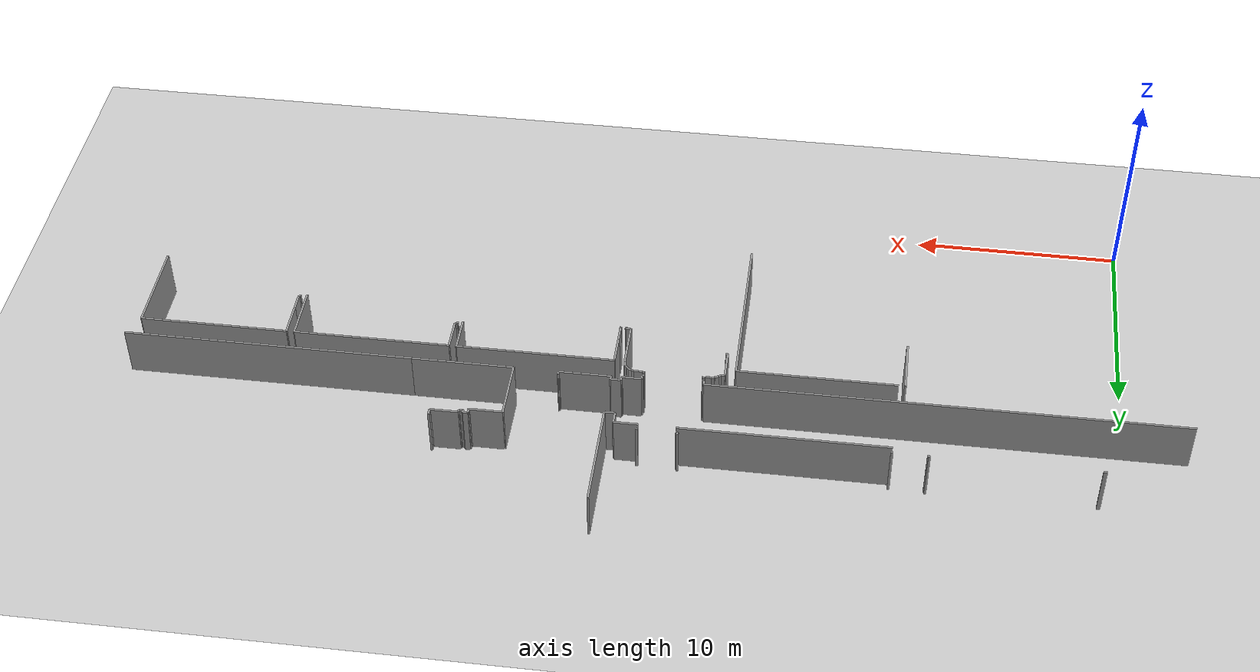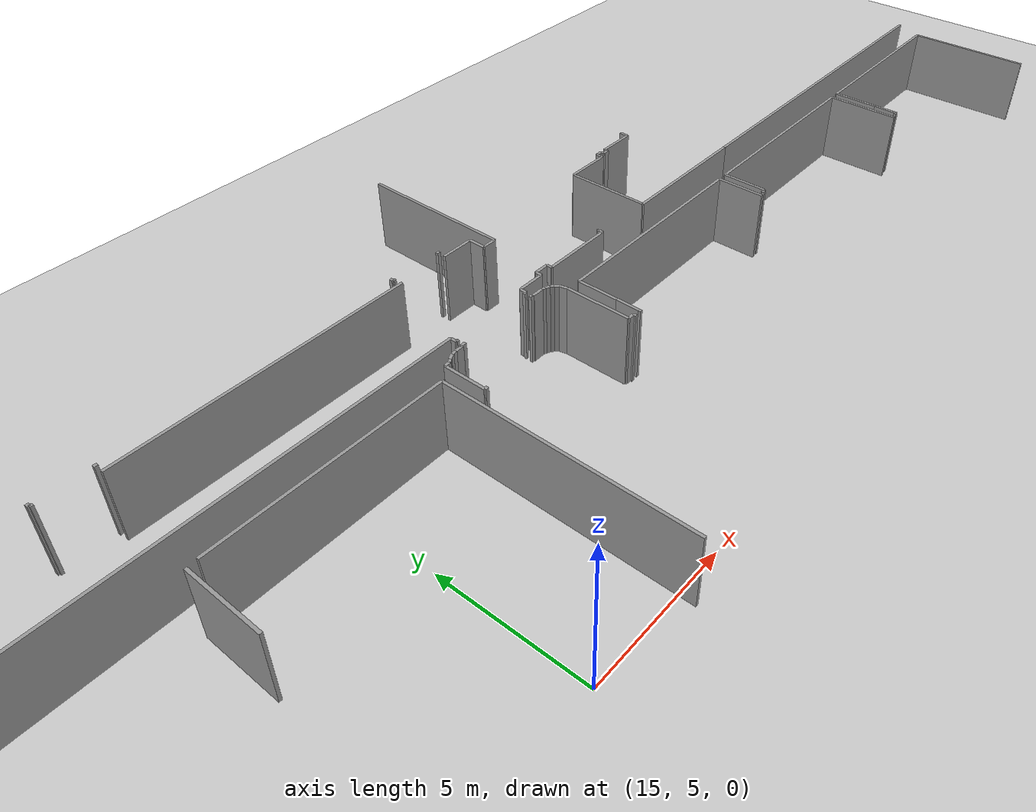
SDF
<sdf version="1.6">
 <world name="default">
  <model name="ground_plane">
   <static>1</static>
   <link name="link">
    <collision name="collision">
     <geometry><plane><normal>0 0 1</normal><size>100 100</size></plane></geometry>
     <surface><friction><ode><mu>100</mu><mu2>50</mu2></ode></friction></surface>
    </collision>
    <visual name="visual">
     <cast_shadows>0</cast_shadows>
     <geometry><plane><normal>0 0 1</normal><size>100 100</size></plane></geometry>
     <material>
      <script><uri>file://media/materials/scripts/gazebo.material</uri><name>Gazebo/Grey</name></script>
     </material>
    </visual>
   </link>
  </model>
  <model name="0510032267_A_40_1_101">
   <static>1</static>
   <link name="Wall_248">
    <collision name="Wall_248_Collision">
     <geometry><box><size>2.64825675598 0.1 2.5</size></box></geometry>
     <pose>1.32412837799 0 1.25 0 0 0</pose>
    </collision>
    <visual name="Wall_248_Visual">
     <pose>1.32412837799 0 1.25 0 0 0</pose>
     <geometry><box><size>2.64825675598 0.1 2.5</size></box></geometry>
     <material>
      <script><uri>file://media/materials/scripts/gazebo.material</uri><name>Gazebo/Grey</name></script>
      <ambient>1 1 1 1</ambient>
     </material>
    </visual>
    <pose>58.1604915522 -20.8660621811 0 0 0 -1.57079632679</pose>
   </link>
   <link name="Wall_259">
    <collision name="Wall_259_Collision">
     <geometry><box><size>7.67281530573 0.1 2.5</size></box></geometry>
     <pose>3.83640765286 0 1.25 0 0 0</pose>
    </collision>
    <visual name="Wall_259_Visual">
     <pose>3.83640765286 0 1.25 0 0 0</pose>
     <geometry><box><size>7.67281530573 0.1 2.5</size></box></geometry>
     <material>
      <script><uri>file://media/materials/scripts/gazebo.material</uri><name>Gazebo/Grey</name></script>
      <ambient>1 1 1 1</ambient>
     </material>
    </visual>
    <pose>58.4795938467 -20.8532269235 0 0 0 0.0</pose>
   </link>
   <link name="Wall_260">
    <collision name="Wall_260_Collision">
     <geometry><box><size>8.33732581857 0.1 2.5</size></box></geometry>
     <pose>4.16866290928 0 1.25 0 0 0</pose>
    </collision>
    <visual name="Wall_260_Visual">
     <pose>4.16866290928 0 1.25 0 0 0</pose>
     <geometry><box><size>8.33732581857 0.1 2.5</size></box></geometry>
     <material>
      <script><uri>file://media/materials/scripts/gazebo.material</uri><name>Gazebo/Grey</name></script>
      <ambient>1 1 1 1</ambient>
     </material>
    </visual>
    <pose>66.1524091524 -20.8532269235 0 0 0 -1.57079632679</pose>
   </link>
   <link name="Wall_390">
    <collision name="Wall_390_Collision">
     <geometry><box><size>0.112213192357 0.1 2.5</size></box></geometry>
     <pose>0.0561065961787 0 1.25 0 0 0</pose>
    </collision>
    <visual name="Wall_390_Visual">
     <pose>0.0561065961787 0 1.25 0 0 0</pose>
     <geometry><box><size>0.112213192357 0.1 2.5</size></box></geometry>
     <material>
      <script><uri>file://media/materials/scripts/gazebo.material</uri><name>Gazebo/Grey</name></script>
      <ambient>1 1 1 1</ambient>
     </material>
    </visual>
    <pose>58.6613207607 -16.5469344703 0 0 0 3.14159265359</pose>
   </link>
   <link name="Wall_391">
    <collision name="Wall_391_Collision">
     <geometry><box><size>0.0955654820529 0.1 2.5</size></box></geometry>
     <pose>0.0477827410264 0 1.25 0 0 0</pose>
    </collision>
    <visual name="Wall_391_Visual">
     <pose>0.0477827410264 0 1.25 0 0 0</pose>
     <geometry><box><size>0.0955654820529 0.1 2.5</size></box></geometry>
     <material>
      <script><uri>file://media/materials/scripts/gazebo.material</uri><name>Gazebo/Grey</name></script>
      <ambient>1 1 1 1</ambient>
     </material>
    </visual>
    <pose>56.9962955668 -16.5469344703 0 0 0 3.14159265359</pose>
   </link>
   <link name="Wall_392">
    <collision name="Wall_392_Collision">
     <geometry><box><size>0.118821443776 0.1 2.5</size></box></geometry>
     <pose>0.0594107218879 0 1.25 0 0 0</pose>
    </collision>
    <visual name="Wall_392_Visual">
     <pose>0.0594107218879 0 1.25 0 0 0</pose>
     <geometry><box><size>0.118821443776 0.1 2.5</size></box></geometry>
     <material>
      <script><uri>file://media/materials/scripts/gazebo.material</uri><name>Gazebo/Grey</name></script>
      <ambient>1 1 1 1</ambient>
     </material>
    </visual>
    <pose>56.9007300847 -16.5469344703 0 0 0 1.57079632679</pose>
   </link>
   <link name="Wall_408">
    <collision name="Wall_408_Collision">
     <geometry><box><size>0.124158877614 0.1 2.5</size></box></geometry>
     <pose>0.062079438807 0 1.25 0 0 0</pose>
    </collision>
    <visual name="Wall_408_Visual">
     <pose>0.062079438807 0 1.25 0 0 0</pose>
     <geometry><box><size>0.124158877614 0.1 2.5</size></box></geometry>
     <material>
      <script><uri>file://media/materials/scripts/gazebo.material</uri><name>Gazebo/Grey</name></script>
      <ambient>1 1 1 1</ambient>
     </material>
    </visual>
    <pose>70.3885524752 -16.5553218663 0 0 0 3.14159265359</pose>
   </link>
   <link name="Wall_409">
    <collision name="Wall_409_Collision">
     <geometry><box><size>0.0902280482148 0.1 2.5</size></box></geometry>
     <pose>0.0451140241074 0 1.25 0 0 0</pose>
    </collision>
    <visual name="Wall_409_Visual">
     <pose>0.0451140241074 0 1.25 0 0 0</pose>
     <geometry><box><size>0.0902280482148 0.1 2.5</size></box></geometry>
     <material>
      <script><uri>file://media/materials/scripts/gazebo.material</uri><name>Gazebo/Grey</name></script>
      <ambient>1 1 1 1</ambient>
     </material>
    </visual>
    <pose>68.5218485313 -16.5553218663 0 0 0 3.14159265359</pose>
   </link>
   <link name="Wall_410">
    <collision name="Wall_410_Collision">
     <geometry><box><size>0.11920268905 0.1 2.5</size></box></geometry>
     <pose>0.059601344525 0 1.25 0 0 0</pose>
    </collision>
    <visual name="Wall_410_Visual">
     <pose>0.059601344525 0 1.25 0 0 0</pose>
     <geometry><box><size>0.11920268905 0.1 2.5</size></box></geometry>
     <material>
      <script><uri>file://media/materials/scripts/gazebo.material</uri><name>Gazebo/Grey</name></script>
      <ambient>1 1 1 1</ambient>
     </material>
    </visual>
    <pose>68.431620483 -16.5553218663 0 0 0 1.57079632679</pose>
   </link>
   <link name="Wall_414">
    <collision name="Wall_414_Collision">
     <geometry><box><size>0.107384085551 0.1 2.5</size></box></geometry>
     <pose>0.0536920427757 0 1.25 0 0 0</pose>
    </collision>
    <visual name="Wall_414_Visual">
     <pose>0.0536920427757 0 1.25 0 0 0</pose>
     <geometry><box><size>0.107384085551 0.1 2.5</size></box></geometry>
     <material>
      <script><uri>file://media/materials/scripts/gazebo.material</uri><name>Gazebo/Grey</name></script>
      <ambient>1 1 1 1</ambient>
     </material>
    </visual>
    <pose>66.74931217 -21.9461300428 0 0 0 3.14159265359</pose>
   </link>
   <link name="Wall_415">
    <collision name="Wall_415_Collision">
     <geometry><box><size>1.46499850679 0.1 2.5</size></box></geometry>
     <pose>0.732499253395 0 1.25 0 0 0</pose>
    </collision>
    <visual name="Wall_415_Visual">
     <pose>0.732499253395 0 1.25 0 0 0</pose>
     <geometry><box><size>1.46499850679 0.1 2.5</size></box></geometry>
     <material>
      <script><uri>file://media/materials/scripts/gazebo.material</uri><name>Gazebo/Grey</name></script>
      <ambient>1 1 1 1</ambient>
     </material>
    </visual>
    <pose>66.6419280844 -21.9461300428 0 0 0 1.57079632679</pose>
   </link>
   <link name="Wall_416">
    <collision name="Wall_416_Collision">
     <geometry><box><size>0.178422788301 0.1 2.5</size></box></geometry>
     <pose>0.0892113941504 0 1.25 0 0 0</pose>
    </collision>
    <visual name="Wall_416_Visual">
     <pose>0.0892113941504 0 1.25 0 0 0</pose>
     <geometry><box><size>0.178422788301 0.1 2.5</size></box></geometry>
     <material>
      <script><uri>file://media/materials/scripts/gazebo.material</uri><name>Gazebo/Grey</name></script>
      <ambient>1 1 1 1</ambient>
     </material>
    </visual>
    <pose>66.6419280844 -20.481131536 0 0 0 0.0</pose>
   </link>
   <link name="Wall_417">
    <collision name="Wall_417_Collision">
     <geometry><box><size>0.15060984525 0.1 2.5</size></box></geometry>
     <pose>0.0753049226251 0 1.25 0 0 0</pose>
    </collision>
    <visual name="Wall_417_Visual">
     <pose>0.0753049226251 0 1.25 0 0 0</pose>
     <geometry><box><size>0.15060984525 0.1 2.5</size></box></geometry>
     <material>
      <script><uri>file://media/materials/scripts/gazebo.material</uri><name>Gazebo/Grey</name></script>
      <ambient>1 1 1 1</ambient>
     </material>
    </visual>
    <pose>66.8203508727 -20.481131536 0 0 0 0.687391822365</pose>
   </link>
   <link name="Wall_418">
    <collision name="Wall_418_Collision">
     <geometry><box><size>0.204313520333 0.1 2.5</size></box></geometry>
     <pose>0.102156760166 0 1.25 0 0 0</pose>
    </collision>
    <visual name="Wall_418_Visual">
     <pose>0.102156760166 0 1.25 0 0 0</pose>
     <geometry><box><size>0.204313520333 0.1 2.5</size></box></geometry>
     <material>
      <script><uri>file://media/materials/scripts/gazebo.material</uri><name>Gazebo/Grey</name></script>
      <ambient>1 1 1 1</ambient>
     </material>
    </visual>
    <pose>66.9367577631 -20.3855660539 0 0 0 0.463647609001</pose>
   </link>
   <link name="Wall_419">
    <collision name="Wall_419_Collision">
     <geometry><box><size>0.151020242014 0.1 2.5</size></box></geometry>
     <pose>0.0755101210072 0 1.25 0 0 0</pose>
    </collision>
    <visual name="Wall_419_Visual">
     <pose>0.0755101210072 0 1.25 0 0 0</pose>
     <geometry><box><size>0.151020242014 0.1 2.5</size></box></geometry>
     <material>
      <script><uri>file://media/materials/scripts/gazebo.material</uri><name>Gazebo/Grey</name></script>
      <ambient>1 1 1 1</ambient>
     </material>
    </visual>
    <pose>67.1195013312 -20.2941942699 0 0 0 0.138445919906</pose>
   </link>
   <link name="Wall_420">
    <collision name="Wall_420_Collision">
     <geometry><box><size>0.265855037839 0.1 2.5</size></box></geometry>
     <pose>0.132927518919 0 1.25 0 0 0</pose>
    </collision>
    <visual name="Wall_420_Visual">
     <pose>0.132927518919 0 1.25 0 0 0</pose>
     <geometry><box><size>0.265855037839 0.1 2.5</size></box></geometry>
     <material>
      <script><uri>file://media/materials/scripts/gazebo.material</uri><name>Gazebo/Grey</name></script>
      <ambient>1 1 1 1</ambient>
     </material>
    </visual>
    <pose>67.2690765604 -20.2733528616 0 0 0 0.0</pose>
   </link>
   <link name="Wall_421">
    <collision name="Wall_421_Collision">
     <geometry><box><size>0.041428653124 0.1 2.5</size></box></geometry>
     <pose>0.020714326562 0 1.25 0 0 0</pose>
    </collision>
    <visual name="Wall_421_Visual">
     <pose>0.020714326562 0 1.25 0 0 0</pose>
     <geometry><box><size>0.041428653124 0.1 2.5</size></box></geometry>
     <material>
      <script><uri>file://media/materials/scripts/gazebo.material</uri><name>Gazebo/Grey</name></script>
      <ambient>1 1 1 1</ambient>
     </material>
    </visual>
    <pose>67.5349315982 -20.2733528616 0 0 0 1.57079632679</pose>
   </link>
   <link name="Wall_422">
    <collision name="Wall_422_Collision">
     <geometry><box><size>0.162029241513 0.1 2.5</size></box></geometry>
     <pose>0.0810146207563 0 1.25 0 0 0</pose>
    </collision>
    <visual name="Wall_422_Visual">
     <pose>0.0810146207563 0 1.25 0 0 0</pose>
     <geometry><box><size>0.162029241513 0.1 2.5</size></box></geometry>
     <material>
      <script><uri>file://media/materials/scripts/gazebo.material</uri><name>Gazebo/Grey</name></script>
      <ambient>1 1 1 1</ambient>
     </material>
    </visual>
    <pose>67.5349315982 -20.2319242084 0 0 0 0.0</pose>
   </link>
   <link name="Wall_423">
    <collision name="Wall_423_Collision">
     <geometry><box><size>0.104715368632 0.1 2.5</size></box></geometry>
     <pose>0.0523576843162 0 1.25 0 0 0</pose>
    </collision>
    <visual name="Wall_423_Visual">
     <pose>0.0523576843162 0 1.25 0 0 0</pose>
     <geometry><box><size>0.104715368632 0.1 2.5</size></box></geometry>
     <material>
      <script><uri>file://media/materials/scripts/gazebo.material</uri><name>Gazebo/Grey</name></script>
      <ambient>1 1 1 1</ambient>
     </material>
    </visual>
    <pose>70.4184166884 -20.2319242084 0 0 0 0.0</pose>
   </link>
   <link name="Wall_424">
    <collision name="Wall_424_Collision">
     <geometry><box><size>0.0261788421581 0.1 2.5</size></box></geometry>
     <pose>0.013089421079 0 1.25 0 0 0</pose>
    </collision>
    <visual name="Wall_424_Visual">
     <pose>0.013089421079 0 1.25 0 0 0</pose>
     <geometry><box><size>0.0261788421581 0.1 2.5</size></box></geometry>
     <material>
      <script><uri>file://media/materials/scripts/gazebo.material</uri><name>Gazebo/Grey</name></script>
      <ambient>1 1 1 1</ambient>
     </material>
    </visual>
    <pose>70.523132057 -20.2319242084 0 0 0 -1.57079632679</pose>
   </link>
   <link name="Wall_425">
    <collision name="Wall_425_Collision">
     <geometry><box><size>0.404628317628 0.1 2.5</size></box></geometry>
     <pose>0.202314158814 0 1.25 0 0 0</pose>
    </collision>
    <visual name="Wall_425_Visual">
     <pose>0.202314158814 0 1.25 0 0 0</pose>
     <geometry><box><size>0.404628317628 0.1 2.5</size></box></geometry>
     <material>
      <script><uri>file://media/materials/scripts/gazebo.material</uri><name>Gazebo/Grey</name></script>
      <ambient>1 1 1 1</ambient>
     </material>
    </visual>
    <pose>70.523132057 -20.2581030506 0 0 0 0.0</pose>
   </link>
   <link name="Wall_426">
    <collision name="Wall_426_Collision">
     <geometry><box><size>0.120098985071 0.1 2.5</size></box></geometry>
     <pose>0.0600494925353 0 1.25 0 0 0</pose>
    </collision>
    <visual name="Wall_426_Visual">
     <pose>0.0600494925353 0 1.25 0 0 0</pose>
     <geometry><box><size>0.120098985071 0.1 2.5</size></box></geometry>
     <material>
      <script><uri>file://media/materials/scripts/gazebo.material</uri><name>Gazebo/Grey</name></script>
      <ambient>1 1 1 1</ambient>
     </material>
    </visual>
    <pose>70.9277603746 -20.2581030506 0 0 0 -0.273212493587</pose>
   </link>
   <link name="Wall_427">
    <collision name="Wall_427_Collision">
     <geometry><box><size>0.148931199877 0.1 2.5</size></box></geometry>
     <pose>0.0744655999385 0 1.25 0 0 0</pose>
    </collision>
    <visual name="Wall_427_Visual">
     <pose>0.0744655999385 0 1.25 0 0 0</pose>
     <geometry><box><size>0.148931199877 0.1 2.5</size></box></geometry>
     <material>
      <script><uri>file://media/materials/scripts/gazebo.material</uri><name>Gazebo/Grey</name></script>
      <ambient>1 1 1 1</ambient>
     </material>
    </visual>
    <pose>71.0434047745 -20.2905088989 0 0 0 -0.398729399306</pose>
   </link>
   <link name="Wall_428">
    <collision name="Wall_428_Collision">
     <geometry><box><size>0.128094692901 0.1 2.5</size></box></geometry>
     <pose>0.0640473464504 0 1.25 0 0 0</pose>
    </collision>
    <visual name="Wall_428_Visual">
     <pose>0.0640473464504 0 1.25 0 0 0</pose>
     <geometry><box><size>0.128094692901 0.1 2.5</size></box></geometry>
     <material>
      <script><uri>file://media/materials/scripts/gazebo.material</uri><name>Gazebo/Grey</name></script>
      <ambient>1 1 1 1</ambient>
     </material>
    </visual>
    <pose>71.1806530732 -20.3483310988 0 0 0 -0.706043688824</pose>
   </link>
   <link name="Wall_429">
    <collision name="Wall_429_Collision">
     <geometry><box><size>0.16897329798 0.1 2.5</size></box></geometry>
     <pose>0.0844866489899 0 1.25 0 0 0</pose>
    </collision>
    <visual name="Wall_429_Visual">
     <pose>0.0844866489899 0 1.25 0 0 0</pose>
     <geometry><box><size>0.16897329798 0.1 2.5</size></box></geometry>
     <material>
      <script><uri>file://media/materials/scripts/gazebo.material</uri><name>Gazebo/Grey</name></script>
      <ambient>1 1 1 1</ambient>
     </material>
    </visual>
    <pose>71.2781247816 -20.4314425686 0 0 0 -0.845528040585</pose>
   </link>
   <link name="Wall_430">
    <collision name="Wall_430_Collision">
     <geometry><box><size>0.267279796427 0.1 2.5</size></box></geometry>
     <pose>0.133639898214 0 1.25 0 0 0</pose>
    </collision>
    <visual name="Wall_430_Visual">
     <pose>0.133639898214 0 1.25 0 0 0</pose>
     <geometry><box><size>0.267279796427 0.1 2.5</size></box></geometry>
     <material>
      <script><uri>file://media/materials/scripts/gazebo.material</uri><name>Gazebo/Grey</name></script>
      <ambient>1 1 1 1</ambient>
     </material>
    </visual>
    <pose>71.3902108922 -20.5578889178 0 0 0 -1.3390794856</pose>
   </link>
   <link name="Wall_431">
    <collision name="Wall_431_Collision">
     <geometry><box><size>2.24083263968 0.1 2.5</size></box></geometry>
     <pose>1.12041631984 0 1.25 0 0 0</pose>
    </collision>
    <visual name="Wall_431_Visual">
     <pose>1.12041631984 0 1.25 0 0 0</pose>
     <geometry><box><size>2.24083263968 0.1 2.5</size></box></geometry>
     <material>
      <script><uri>file://media/materials/scripts/gazebo.material</uri><name>Gazebo/Grey</name></script>
      <ambient>1 1 1 1</ambient>
     </material>
    </visual>
    <pose>71.4515913813 -20.8180252766 0 0 0 -1.57079632679</pose>
   </link>
   <link name="Wall_432">
    <collision name="Wall_432_Collision">
     <geometry><box><size>0.241328258535 0.1 2.5</size></box></geometry>
     <pose>0.120664129268 0 1.25 0 0 0</pose>
    </collision>
    <visual name="Wall_432_Visual">
     <pose>0.120664129268 0 1.25 0 0 0</pose>
     <geometry><box><size>0.241328258535 0.1 2.5</size></box></geometry>
     <material>
      <script><uri>file://media/materials/scripts/gazebo.material</uri><name>Gazebo/Grey</name></script>
      <ambient>1 1 1 1</ambient>
     </material>
    </visual>
    <pose>71.4515913813 -23.0588579162 0 0 0 0.0</pose>
   </link>
   <link name="Wall_433">
    <collision name="Wall_433_Collision">
     <geometry><box><size>0.10357163281 0.1 2.5</size></box></geometry>
     <pose>0.051785816405 0 1.25 0 0 0</pose>
    </collision>
    <visual name="Wall_433_Visual">
     <pose>0.051785816405 0 1.25 0 0 0</pose>
     <geometry><box><size>0.10357163281 0.1 2.5</size></box></geometry>
     <material>
      <script><uri>file://media/materials/scripts/gazebo.material</uri><name>Gazebo/Grey</name></script>
      <ambient>1 1 1 1</ambient>
     </material>
    </visual>
    <pose>71.6929196399 -23.0588579162 0 0 0 -1.57079632679</pose>
   </link>
   <link name="Wall_450">
    <collision name="Wall_450_Collision">
     <geometry><box><size>1.42420526246 0.1 2.5</size></box></geometry>
     <pose>0.712102631228 0 1.25 0 0 0</pose>
    </collision>
    <visual name="Wall_450_Visual">
     <pose>0.712102631228 0 1.25 0 0 0</pose>
     <geometry><box><size>1.42420526246 0.1 2.5</size></box></geometry>
     <material>
      <script><uri>file://media/materials/scripts/gazebo.material</uri><name>Gazebo/Grey</name></script>
      <ambient>1 1 1 1</ambient>
     </material>
    </visual>
    <pose>71.9506414452 -22.2682822994 0 0 0 1.57079632679</pose>
   </link>
   <link name="Wall_451">
    <collision name="Wall_451_Collision">
     <geometry><box><size>7.6289720992 0.1 2.5</size></box></geometry>
     <pose>3.8144860496 0 1.25 0 0 0</pose>
    </collision>
    <visual name="Wall_451_Visual">
     <pose>3.8144860496 0 1.25 0 0 0</pose>
     <geometry><box><size>7.6289720992 0.1 2.5</size></box></geometry>
     <material>
      <script><uri>file://media/materials/scripts/gazebo.material</uri><name>Gazebo/Grey</name></script>
      <ambient>1 1 1 1</ambient>
     </material>
    </visual>
    <pose>71.9506414452 -20.844077037 0 0 0 0.0</pose>
   </link>
   <link name="Wall_452">
    <collision name="Wall_452_Collision">
     <geometry><box><size>1.67481048933 0.1 2.5</size></box></geometry>
     <pose>0.837405244664 0 1.25 0 0 0</pose>
    </collision>
    <visual name="Wall_452_Visual">
     <pose>0.837405244664 0 1.25 0 0 0</pose>
     <geometry><box><size>1.67481048933 0.1 2.5</size></box></geometry>
     <material>
      <script><uri>file://media/materials/scripts/gazebo.material</uri><name>Gazebo/Grey</name></script>
      <ambient>1 1 1 1</ambient>
     </material>
    </visual>
    <pose>79.5796135444 -20.844077037 0 0 0 -1.57079632679</pose>
   </link>
   <link name="Wall_461">
    <collision name="Wall_461_Collision">
     <geometry><box><size>0.0850176961348 0.1 2.5</size></box></geometry>
     <pose>0.0425088480674 0 1.25 0 0 0</pose>
    </collision>
    <visual name="Wall_461_Visual">
     <pose>0.0425088480674 0 1.25 0 0 0</pose>
     <geometry><box><size>0.0850176961348 0.1 2.5</size></box></geometry>
     <material>
      <script><uri>file://media/materials/scripts/gazebo.material</uri><name>Gazebo/Grey</name></script>
      <ambient>1 1 1 1</ambient>
     </material>
    </visual>
    <pose>71.9380603511 -23.1462901658 0 0 0 1.57079632679</pose>
   </link>
   <link name="Wall_462">
    <collision name="Wall_462_Collision">
     <geometry><box><size>0.0120727670147 0.1 2.5</size></box></geometry>
     <pose>0.00603638350734 0 1.25 0 0 0</pose>
    </collision>
    <visual name="Wall_462_Visual">
     <pose>0.00603638350734 0 1.25 0 0 0</pose>
     <geometry><box><size>0.0120727670147 0.1 2.5</size></box></geometry>
     <material>
      <script><uri>file://media/materials/scripts/gazebo.material</uri><name>Gazebo/Grey</name></script>
      <ambient>1 1 1 1</ambient>
     </material>
    </visual>
    <pose>71.9380603511 -23.0612724696 0 0 0 0.0</pose>
   </link>
   <link name="Wall_463">
    <collision name="Wall_463_Collision">
     <geometry><box><size>0.792990333151 0.1 2.5</size></box></geometry>
     <pose>0.396495166576 0 1.25 0 0 0</pose>
    </collision>
    <visual name="Wall_463_Visual">
     <pose>0.396495166576 0 1.25 0 0 0</pose>
     <geometry><box><size>0.792990333151 0.1 2.5</size></box></geometry>
     <material>
      <script><uri>file://media/materials/scripts/gazebo.material</uri><name>Gazebo/Grey</name></script>
      <ambient>1 1 1 1</ambient>
     </material>
    </visual>
    <pose>71.9501331181 -23.0612724696 0 0 0 1.57015530124</pose>
   </link>
   <link name="Wall_474">
    <collision name="Wall_474_Collision">
     <geometry><box><size>0.0913717840373 0.1 2.5</size></box></geometry>
     <pose>0.0456858920186 0 1.25 0 0 0</pose>
    </collision>
    <visual name="Wall_474_Visual">
     <pose>0.0456858920186 0 1.25 0 0 0</pose>
     <geometry><box><size>0.0913717840373 0.1 2.5</size></box></geometry>
     <material>
      <script><uri>file://media/materials/scripts/gazebo.material</uri><name>Gazebo/Grey</name></script>
      <ambient>1 1 1 1</ambient>
     </material>
    </visual>
    <pose>79.818273086 -22.4876254138 0 0 0 1.57079632679</pose>
   </link>
   <link name="Wall_475">
    <collision name="Wall_475_Collision">
     <geometry><box><size>0.125683858711 0.1 2.5</size></box></geometry>
     <pose>0.0628419293553 0 1.25 0 0 0</pose>
    </collision>
    <visual name="Wall_475_Visual">
     <pose>0.0628419293553 0 1.25 0 0 0</pose>
     <geometry><box><size>0.125683858711 0.1 2.5</size></box></geometry>
     <material>
      <script><uri>file://media/materials/scripts/gazebo.material</uri><name>Gazebo/Grey</name></script>
      <ambient>1 1 1 1</ambient>
     </material>
    </visual>
    <pose>79.818273086 -22.3962536298 0 0 0 0.0</pose>
   </link>
   <link name="Wall_476">
    <collision name="Wall_476_Collision">
     <geometry><box><size>1.54950787589 0.1 2.5</size></box></geometry>
     <pose>0.774753937946 0 1.25 0 0 0</pose>
    </collision>
    <visual name="Wall_476_Visual">
     <pose>0.774753937946 0 1.25 0 0 0</pose>
     <geometry><box><size>1.54950787589 0.1 2.5</size></box></geometry>
     <material>
      <script><uri>file://media/materials/scripts/gazebo.material</uri><name>Gazebo/Grey</name></script>
      <ambient>1 1 1 1</ambient>
     </material>
    </visual>
    <pose>79.9439569447 -22.3962536298 0 0 0 1.57079632679</pose>
   </link>
   <link name="Wall_477">
    <collision name="Wall_477_Collision">
     <geometry><box><size>7.566574956 0.1 2.5</size></box></geometry>
     <pose>3.783287478 0 1.25 0 0 0</pose>
    </collision>
    <visual name="Wall_477_Visual">
     <pose>3.783287478 0 1.25 0 0 0</pose>
     <geometry><box><size>7.566574956 0.1 2.5</size></box></geometry>
     <material>
      <script><uri>file://media/materials/scripts/gazebo.material</uri><name>Gazebo/Grey</name></script>
      <ambient>1 1 1 1</ambient>
     </material>
    </visual>
    <pose>79.9439569447 -20.8467457539 0 0 0 0.0</pose>
   </link>
   <link name="Wall_478">
    <collision name="Wall_478_Collision">
     <geometry><box><size>2.60466771297 0.1 2.5</size></box></geometry>
     <pose>1.30233385649 0 1.25 0 0 0</pose>
    </collision>
    <visual name="Wall_478_Visual">
     <pose>1.30233385649 0 1.25 0 0 0</pose>
     <geometry><box><size>2.60466771297 0.1 2.5</size></box></geometry>
     <material>
      <script><uri>file://media/materials/scripts/gazebo.material</uri><name>Gazebo/Grey</name></script>
      <ambient>1 1 1 1</ambient>
     </material>
    </visual>
    <pose>87.5105319007 -20.8467457539 0 0 0 -1.57079632679</pose>
   </link>
   <link name="Wall_488">
    <collision name="Wall_488_Collision">
     <geometry><box><size>1.61343000019 0.1 2.5</size></box></geometry>
     <pose>0.806715000095 0 1.25 0 0 0</pose>
    </collision>
    <visual name="Wall_488_Visual">
     <pose>0.806715000095 0 1.25 0 0 0</pose>
     <geometry><box><size>1.61343000019 0.1 2.5</size></box></geometry>
     <material>
      <script><uri>file://media/materials/scripts/gazebo.material</uri><name>Gazebo/Grey</name></script>
      <ambient>1 1 1 1</ambient>
     </material>
    </visual>
    <pose>87.8968604452 -22.4597945088 0 0 0 1.57079632679</pose>
   </link>
   <link name="Wall_489">
    <collision name="Wall_489_Collision">
     <geometry><box><size>7.18863380756 0.1 2.5</size></box></geometry>
     <pose>3.59431690378 0 1.25 0 0 0</pose>
    </collision>
    <visual name="Wall_489_Visual">
     <pose>3.59431690378 0 1.25 0 0 0</pose>
     <geometry><box><size>7.18863380756 0.1 2.5</size></box></geometry>
     <material>
      <script><uri>file://media/materials/scripts/gazebo.material</uri><name>Gazebo/Grey</name></script>
      <ambient>1 1 1 1</ambient>
     </material>
    </visual>
    <pose>87.8968604452 -20.8463645086 0 0 0 0.0</pose>
   </link>
   <link name="Wall_490">
    <collision name="Wall_490_Collision">
     <geometry><box><size>4.52195019666 0.1 2.5</size></box></geometry>
     <pose>2.26097509833 0 1.25 0 0 0</pose>
    </collision>
    <visual name="Wall_490_Visual">
     <pose>2.26097509833 0 1.25 0 0 0</pose>
     <geometry><box><size>4.52195019666 0.1 2.5</size></box></geometry>
     <material>
      <script><uri>file://media/materials/scripts/gazebo.material</uri><name>Gazebo/Grey</name></script>
      <ambient>1 1 1 1</ambient>
     </material>
    </visual>
    <pose>95.0854942527 -20.8463645086 0 0 0 -1.57079632679</pose>
   </link>
   <link name="Wall_496">
    <collision name="Wall_496_Collision">
     <geometry><box><size>0.120600588389 0.1 2.5</size></box></geometry>
     <pose>0.0603002941943 0 1.25 0 0 0</pose>
    </collision>
    <visual name="Wall_496_Visual">
     <pose>0.0603002941943 0 1.25 0 0 0</pose>
     <geometry><box><size>0.120600588389 0.1 2.5</size></box></geometry>
     <material>
      <script><uri>file://media/materials/scripts/gazebo.material</uri><name>Gazebo/Grey</name></script>
      <ambient>1 1 1 1</ambient>
     </material>
    </visual>
    <pose>87.7748619574 -23.339454438 0 0 0 0.0</pose>
   </link>
   <link name="Wall_497">
    <collision name="Wall_497_Collision">
     <geometry><box><size>0.879661039941 0.1 2.5</size></box></geometry>
     <pose>0.43983051997 0 1.25 0 0 0</pose>
    </collision>
    <visual name="Wall_497_Visual">
     <pose>0.43983051997 0 1.25 0 0 0</pose>
     <geometry><box><size>0.879661039941 0.1 2.5</size></box></geometry>
     <material>
      <script><uri>file://media/materials/scripts/gazebo.material</uri><name>Gazebo/Grey</name></script>
      <ambient>1 1 1 1</ambient>
     </material>
    </visual>
    <pose>87.8954625458 -23.339454438 0 0 0 1.56920719204</pose>
   </link>
   <link name="Wall_522">
    <collision name="Wall_522_Collision">
     <geometry><box><size>4.91552240134 0.1 2.5</size></box></geometry>
     <pose>2.45776120067 0 1.25 0 0 0</pose>
    </collision>
    <visual name="Wall_522_Visual">
     <pose>2.45776120067 0 1.25 0 0 0</pose>
     <geometry><box><size>4.91552240134 0.1 2.5</size></box></geometry>
     <material>
      <script><uri>file://media/materials/scripts/gazebo.material</uri><name>Gazebo/Grey</name></script>
      <ambient>1 1 1 1</ambient>
     </material>
    </visual>
    <pose>81.5417558887 -19.7760819423 0 0 0 3.14159265359</pose>
   </link>
   <link name="Wall_523">
    <collision name="Wall_523_Collision">
     <geometry><box><size>2.94118020829 0.1 2.5</size></box></geometry>
     <pose>1.47059010414 0 1.25 0 0 0</pose>
    </collision>
    <visual name="Wall_523_Visual">
     <pose>1.47059010414 0 1.25 0 0 0</pose>
     <geometry><box><size>2.94118020829 0.1 2.5</size></box></geometry>
     <material>
      <script><uri>file://media/materials/scripts/gazebo.material</uri><name>Gazebo/Grey</name></script>
      <ambient>1 1 1 1</ambient>
     </material>
    </visual>
    <pose>76.6262334873 -19.7760819423 0 0 0 1.57079632679</pose>
   </link>
   <link name="Wall_524">
    <collision name="Wall_524_Collision">
     <geometry><box><size>1.59652812637 0.1 2.5</size></box></geometry>
     <pose>0.798264063185 0 1.25 0 0 0</pose>
    </collision>
    <visual name="Wall_524_Visual">
     <pose>0.798264063185 0 1.25 0 0 0</pose>
     <geometry><box><size>1.59652812637 0.1 2.5</size></box></geometry>
     <material>
      <script><uri>file://media/materials/scripts/gazebo.material</uri><name>Gazebo/Grey</name></script>
      <ambient>1 1 1 1</ambient>
     </material>
    </visual>
    <pose>76.6262334873 -16.834901734 0 0 0 0.0</pose>
   </link>
   <link name="Wall_525">
    <collision name="Wall_525_Collision">
     <geometry><box><size>0.240057440955 0.1 2.5</size></box></geometry>
     <pose>0.120028720477 0 1.25 0 0 0</pose>
    </collision>
    <visual name="Wall_525_Visual">
     <pose>0.120028720477 0 1.25 0 0 0</pose>
     <geometry><box><size>0.240057440955 0.1 2.5</size></box></geometry>
     <material>
      <script><uri>file://media/materials/scripts/gazebo.material</uri><name>Gazebo/Grey</name></script>
      <ambient>1 1 1 1</ambient>
     </material>
    </visual>
    <pose>78.2227616137 -16.834901734 0 0 0 1.57079632679</pose>
   </link>
   <link name="Wall_526">
    <collision name="Wall_526_Collision">
     <geometry><box><size>0.246411528857 0.1 2.5</size></box></geometry>
     <pose>0.123205764429 0 1.25 0 0 0</pose>
    </collision>
    <visual name="Wall_526_Visual">
     <pose>0.123205764429 0 1.25 0 0 0</pose>
     <geometry><box><size>0.246411528857 0.1 2.5</size></box></geometry>
     <material>
      <script><uri>file://media/materials/scripts/gazebo.material</uri><name>Gazebo/Grey</name></script>
      <ambient>1 1 1 1</ambient>
     </material>
    </visual>
    <pose>78.2227616137 -16.5948442931 0 0 0 0.0</pose>
   </link>
   <link name="Wall_527">
    <collision name="Wall_527_Collision">
     <geometry><box><size>0.119965179598 0.1 2.5</size></box></geometry>
     <pose>0.0599825897991 0 1.25 0 0 0</pose>
    </collision>
    <visual name="Wall_527_Visual">
     <pose>0.0599825897991 0 1.25 0 0 0</pose>
     <geometry><box><size>0.119965179598 0.1 2.5</size></box></geometry>
     <material>
      <script><uri>file://media/materials/scripts/gazebo.material</uri><name>Gazebo/Grey</name></script>
      <ambient>1 1 1 1</ambient>
     </material>
    </visual>
    <pose>78.4691731425 -16.5948442931 0 0 0 -1.57079632679</pose>
   </link>
   <link name="Wall_528">
    <collision name="Wall_528_Collision">
     <geometry><box><size>0.202187077056 0.1 2.5</size></box></geometry>
     <pose>0.101093538528 0 1.25 0 0 0</pose>
    </collision>
    <visual name="Wall_528_Visual">
     <pose>0.101093538528 0 1.25 0 0 0</pose>
     <geometry><box><size>0.202187077056 0.1 2.5</size></box></geometry>
     <material>
      <script><uri>file://media/materials/scripts/gazebo.material</uri><name>Gazebo/Grey</name></script>
      <ambient>1 1 1 1</ambient>
     </material>
    </visual>
    <pose>78.4691731425 -16.7148094727 0 0 0 0.0</pose>
   </link>
   <link name="Wall_529">
    <collision name="Wall_529_Collision">
     <geometry><box><size>0.126319267501 0.1 2.5</size></box></geometry>
     <pose>0.0631596337504 0 1.25 0 0 0</pose>
    </collision>
    <visual name="Wall_529_Visual">
     <pose>0.0631596337504 0 1.25 0 0 0</pose>
     <geometry><box><size>0.126319267501 0.1 2.5</size></box></geometry>
     <material>
      <script><uri>file://media/materials/scripts/gazebo.material</uri><name>Gazebo/Grey</name></script>
      <ambient>1 1 1 1</ambient>
     </material>
    </visual>
    <pose>78.6713602196 -16.7148094727 0 0 0 1.57079632679</pose>
   </link>
   <link name="Wall_530">
    <collision name="Wall_530_Collision">
     <geometry><box><size>1.35151449685 0.1 2.5</size></box></geometry>
     <pose>0.675757248426 0 1.25 0 0 0</pose>
    </collision>
    <visual name="Wall_530_Visual">
     <pose>0.675757248426 0 1.25 0 0 0</pose>
     <geometry><box><size>1.35151449685 0.1 2.5</size></box></geometry>
     <material>
      <script><uri>file://media/materials/scripts/gazebo.material</uri><name>Gazebo/Grey</name></script>
      <ambient>1 1 1 1</ambient>
     </material>
    </visual>
    <pose>78.6713602196 -16.5884902052 0 0 0 0.0</pose>
   </link>
   <link name="Wall_531">
    <collision name="Wall_531_Collision">
     <geometry><box><size>0.307410772721 0.1 2.5</size></box></geometry>
     <pose>0.15370538636 0 1.25 0 0 0</pose>
    </collision>
    <visual name="Wall_531_Visual">
     <pose>0.15370538636 0 1.25 0 0 0</pose>
     <geometry><box><size>0.307410772721 0.1 2.5</size></box></geometry>
     <material>
      <script><uri>file://media/materials/scripts/gazebo.material</uri><name>Gazebo/Grey</name></script>
      <ambient>1 1 1 1</ambient>
     </material>
    </visual>
    <pose>80.0228747164 -16.5884902052 0 0 0 1.57079632679</pose>
   </link>
   <link name="Wall_553">
    <collision name="Wall_553_Collision">
     <geometry><box><size>14.0668157066 0.1 2.5</size></box></geometry>
     <pose>7.03340785331 0 1.25 0 0 0</pose>
    </collision>
    <visual name="Wall_553_Visual">
     <pose>7.03340785331 0 1.25 0 0 0</pose>
     <geometry><box><size>14.0668157066 0.1 2.5</size></box></geometry>
     <material>
      <script><uri>file://media/materials/scripts/gazebo.material</uri><name>Gazebo/Grey</name></script>
      <ambient>1 1 1 1</ambient>
     </material>
    </visual>
    <pose>95.6085627689 -19.7918400803 0 0 0 3.14047241845</pose>
   </link>
   <link name="Wall_561">
    <collision name="Wall_561_Collision">
     <geometry><box><size>9.94160593218 0.1 2.5</size></box></geometry>
     <pose>4.97080296609 0 1.25 0 0 0</pose>
    </collision>
    <visual name="Wall_561_Visual">
     <pose>4.97080296609 0 1.25 0 0 0</pose>
     <geometry><box><size>9.94160593218 0.1 2.5</size></box></geometry>
     <material>
      <script><uri>file://media/materials/scripts/gazebo.material</uri><name>Gazebo/Grey</name></script>
      <ambient>1 1 1 1</ambient>
     </material>
    </visual>
    <pose>58.5890112404 -16.8460849287 0 0 0 0.0</pose>
   </link>
   <link name="Wall_562">
    <collision name="Wall_562_Collision">
     <geometry><box><size>1.15313987254 0.1 2.5</size></box></geometry>
     <pose>0.576569936268 0 1.25 0 0 0</pose>
    </collision>
    <visual name="Wall_562_Visual">
     <pose>0.576569936268 0 1.25 0 0 0</pose>
     <geometry><box><size>1.15313987254 0.1 2.5</size></box></geometry>
     <material>
      <script><uri>file://media/materials/scripts/gazebo.material</uri><name>Gazebo/Grey</name></script>
      <ambient>1 1 1 1</ambient>
     </material>
    </visual>
    <pose>70.2961640371 -16.8460849287 0 0 0 0.0</pose>
   </link>
   <link name="Wall_563">
    <collision name="Wall_563_Collision">
     <geometry><box><size>0.586990640429 0.1 2.5</size></box></geometry>
     <pose>0.293495320214 0 1.25 0 0 0</pose>
    </collision>
    <visual name="Wall_563_Visual">
     <pose>0.293495320214 0 1.25 0 0 0</pose>
     <geometry><box><size>0.586990640429 0.1 2.5</size></box></geometry>
     <material>
      <script><uri>file://media/materials/scripts/gazebo.material</uri><name>Gazebo/Grey</name></script>
      <ambient>1 1 1 1</ambient>
     </material>
    </visual>
    <pose>71.4493039097 -16.8460849287 0 0 0 -1.57079632679</pose>
   </link>
   <link name="Wall_564">
    <collision name="Wall_564_Collision">
     <geometry><box><size>0.500829208471 0.1 2.5</size></box></geometry>
     <pose>0.250414604236 0 1.25 0 0 0</pose>
    </collision>
    <visual name="Wall_564_Visual">
     <pose>0.250414604236 0 1.25 0 0 0</pose>
     <geometry><box><size>0.500829208471 0.1 2.5</size></box></geometry>
     <material>
      <script><uri>file://media/materials/scripts/gazebo.material</uri><name>Gazebo/Grey</name></script>
      <ambient>1 1 1 1</ambient>
     </material>
    </visual>
    <pose>71.4493039097 -17.4330755692 0 0 0 0.0</pose>
   </link>
   <link name="Wall_565">
    <collision name="Wall_565_Collision">
     <geometry><box><size>5.30528215327 0.1 2.5</size></box></geometry>
     <pose>2.65264107664 0 1.25 0 0 0</pose>
    </collision>
    <visual name="Wall_565_Visual">
     <pose>2.65264107664 0 1.25 0 0 0</pose>
     <geometry><box><size>5.30528215327 0.1 2.5</size></box></geometry>
     <material>
      <script><uri>file://media/materials/scripts/gazebo.material</uri><name>Gazebo/Grey</name></script>
      <ambient>1 1 1 1</ambient>
     </material>
    </visual>
    <pose>71.9501331181 -17.4330755692 0 0 0 1.57079632679</pose>
   </link>
   <link name="Wall_567">
    <collision name="Wall_567_Collision">
     <geometry><box><size>0.0219851441425 0.1 2.5</size></box></geometry>
     <pose>0.0109925720712 0 1.25 0 0 0</pose>
    </collision>
    <visual name="Wall_567_Visual">
     <pose>0.0109925720712 0 1.25 0 0 0</pose>
     <geometry><box><size>0.0219851441425 0.1 2.5</size></box></geometry>
     <material>
      <script><uri>file://media/materials/scripts/gazebo.material</uri><name>Gazebo/Grey</name></script>
      <ambient>1 1 1 1</ambient>
     </material>
    </visual>
    <pose>74.4835079648 -19.5915592296 0 0 0 3.14159265359</pose>
   </link>
   <link name="Wall_568">
    <collision name="Wall_568_Collision">
     <geometry><box><size>0.17588115314 0.1 2.5</size></box></geometry>
     <pose>0.0879405765699 0 1.25 0 0 0</pose>
    </collision>
    <visual name="Wall_568_Visual">
     <pose>0.0879405765699 0 1.25 0 0 0</pose>
     <geometry><box><size>0.17588115314 0.1 2.5</size></box></geometry>
     <material>
      <script><uri>file://media/materials/scripts/gazebo.material</uri><name>Gazebo/Grey</name></script>
      <ambient>1 1 1 1</ambient>
     </material>
    </visual>
    <pose>74.4615228207 -19.5915592296 0 0 0 -1.57079632679</pose>
   </link>
   <link name="Wall_569">
    <collision name="Wall_569_Collision">
     <geometry><box><size>2.50147732544 0.1 2.5</size></box></geometry>
     <pose>1.25073866272 0 1.25 0 0 0</pose>
    </collision>
    <visual name="Wall_569_Visual">
     <pose>1.25073866272 0 1.25 0 0 0</pose>
     <geometry><box><size>2.50147732544 0.1 2.5</size></box></geometry>
     <material>
      <script><uri>file://media/materials/scripts/gazebo.material</uri><name>Gazebo/Grey</name></script>
      <ambient>1 1 1 1</ambient>
     </material>
    </visual>
    <pose>74.4615228207 -19.7674403828 0 0 0 3.14159265359</pose>
   </link>
   <link name="Wall_570">
    <collision name="Wall_570_Collision">
     <geometry><box><size>0.189097655977 0.1 2.5</size></box></geometry>
     <pose>0.0945488279885 0 1.25 0 0 0</pose>
    </collision>
    <visual name="Wall_570_Visual">
     <pose>0.0945488279885 0 1.25 0 0 0</pose>
     <geometry><box><size>0.189097655977 0.1 2.5</size></box></geometry>
     <material>
      <script><uri>file://media/materials/scripts/gazebo.material</uri><name>Gazebo/Grey</name></script>
      <ambient>1 1 1 1</ambient>
     </material>
    </visual>
    <pose>71.9600454953 -19.7674403828 0 0 0 1.57079632679</pose>
   </link>
   <link name="Wall_571">
    <collision name="Wall_571_Collision">
     <geometry><box><size>0.499558390891 0.1 2.5</size></box></geometry>
     <pose>0.249779195445 0 1.25 0 0 0</pose>
    </collision>
    <visual name="Wall_571_Visual">
     <pose>0.249779195445 0 1.25 0 0 0</pose>
     <geometry><box><size>0.499558390891 0.1 2.5</size></box></geometry>
     <material>
      <script><uri>file://media/materials/scripts/gazebo.material</uri><name>Gazebo/Grey</name></script>
      <ambient>1 1 1 1</ambient>
     </material>
    </visual>
    <pose>71.9600454953 -19.5783427268 0 0 0 3.14159265359</pose>
   </link>
   <link name="Wall_572">
    <collision name="Wall_572_Collision">
     <geometry><box><size>0.197485052008 0.1 2.5</size></box></geometry>
     <pose>0.0987425260041 0 1.25 0 0 0</pose>
    </collision>
    <visual name="Wall_572_Visual">
     <pose>0.0987425260041 0 1.25 0 0 0</pose>
     <geometry><box><size>0.197485052008 0.1 2.5</size></box></geometry>
     <material>
      <script><uri>file://media/materials/scripts/gazebo.material</uri><name>Gazebo/Grey</name></script>
      <ambient>1 1 1 1</ambient>
     </material>
    </visual>
    <pose>71.4604871044 -19.5783427268 0 0 0 -1.57079632679</pose>
   </link>
   <link name="Wall_573">
    <collision name="Wall_573_Collision">
     <geometry><box><size>0.94777575153 0.1 2.5</size></box></geometry>
     <pose>0.473887875765 0 1.25 0 0 0</pose>
    </collision>
    <visual name="Wall_573_Visual">
     <pose>0.473887875765 0 1.25 0 0 0</pose>
     <geometry><box><size>0.94777575153 0.1 2.5</size></box></geometry>
     <material>
      <script><uri>file://media/materials/scripts/gazebo.material</uri><name>Gazebo/Grey</name></script>
      <ambient>1 1 1 1</ambient>
     </material>
    </visual>
    <pose>71.4604871044 -19.7758277788 0 0 0 3.14159265359</pose>
   </link>
   <link name="Wall_574">
    <collision name="Wall_574_Collision">
     <geometry><box><size>0.220868095489 0.1 2.5</size></box></geometry>
     <pose>0.110434047745 0 1.25 0 0 0</pose>
    </collision>
    <visual name="Wall_574_Visual">
     <pose>0.110434047745 0 1.25 0 0 0</pose>
     <geometry><box><size>0.220868095489 0.1 2.5</size></box></geometry>
     <material>
      <script><uri>file://media/materials/scripts/gazebo.material</uri><name>Gazebo/Grey</name></script>
      <ambient>1 1 1 1</ambient>
     </material>
    </visual>
    <pose>70.5127113528 -19.7758277788 0 0 0 -1.57079632679</pose>
   </link>
   <link name="Wall_575">
    <collision name="Wall_575_Collision">
     <geometry><box><size>0.0973446266656 0.1 2.5</size></box></geometry>
     <pose>0.0486723133328 0 1.25 0 0 0</pose>
    </collision>
    <visual name="Wall_575_Visual">
     <pose>0.0486723133328 0 1.25 0 0 0</pose>
     <geometry><box><size>0.0973446266656 0.1 2.5</size></box></geometry>
     <material>
      <script><uri>file://media/materials/scripts/gazebo.material</uri><name>Gazebo/Grey</name></script>
      <ambient>1 1 1 1</ambient>
     </material>
    </visual>
    <pose>70.5127113528 -19.9966958743 0 0 0 3.14159265359</pose>
   </link>
   <link name="Wall_576">
    <collision name="Wall_576_Collision">
     <geometry><box><size>0.0866697589894 0.1 2.5</size></box></geometry>
     <pose>0.0433348794947 0 1.25 0 0 0</pose>
    </collision>
    <visual name="Wall_576_Visual">
     <pose>0.0433348794947 0 1.25 0 0 0</pose>
     <geometry><box><size>0.0866697589894 0.1 2.5</size></box></geometry>
     <material>
      <script><uri>file://media/materials/scripts/gazebo.material</uri><name>Gazebo/Grey</name></script>
      <ambient>1 1 1 1</ambient>
     </material>
    </visual>
    <pose>67.6664612178 -19.9966958743 0 0 0 3.14159265359</pose>
   </link>
   <link name="Wall_577">
    <collision name="Wall_577_Collision">
     <geometry><box><size>0.216420233958 0.1 2.5</size></box></geometry>
     <pose>0.108210116979 0 1.25 0 0 0</pose>
    </collision>
    <visual name="Wall_577_Visual">
     <pose>0.108210116979 0 1.25 0 0 0</pose>
     <geometry><box><size>0.216420233958 0.1 2.5</size></box></geometry>
     <material>
      <script><uri>file://media/materials/scripts/gazebo.material</uri><name>Gazebo/Grey</name></script>
      <ambient>1 1 1 1</ambient>
     </material>
    </visual>
    <pose>67.5797914588 -19.9966958743 0 0 0 1.57079632679</pose>
   </link>
   <link name="Wall_578">
    <collision name="Wall_578_Collision">
     <geometry><box><size>22.8358294309 0.1 2.5</size></box></geometry>
     <pose>11.4179147154 0 1.25 0 0 0</pose>
    </collision>
    <visual name="Wall_578_Visual">
     <pose>11.4179147154 0 1.25 0 0 0</pose>
     <geometry><box><size>22.8358294309 0.1 2.5</size></box></geometry>
     <material>
      <script><uri>file://media/materials/scripts/gazebo.material</uri><name>Gazebo/Grey</name></script>
      <ambient>1 1 1 1</ambient>
     </material>
    </visual>
    <pose>67.5797914588 -19.7802756403 0 0 0 3.14159265359</pose>
   </link>
   <link name="Wall_587">
    <collision name="Wall_587_Collision">
     <geometry><box><size>0.178676951817 0.1 2.5</size></box></geometry>
     <pose>0.0893384759085 0 1.25 0 0 0</pose>
    </collision>
    <visual name="Wall_587_Visual">
     <pose>0.0893384759085 0 1.25 0 0 0</pose>
     <geometry><box><size>0.178676951817 0.1 2.5</size></box></geometry>
     <material>
      <script><uri>file://media/materials/scripts/gazebo.material</uri><name>Gazebo/Grey</name></script>
      <ambient>1 1 1 1</ambient>
     </material>
    </visual>
    <pose>49.0731291977 -16.542867854 0 0 0 3.14159265359</pose>
   </link>
   <pose>-47.8 33.6752466975 0 0 0 0</pose>
  </model>
 </world>
</sdf>
